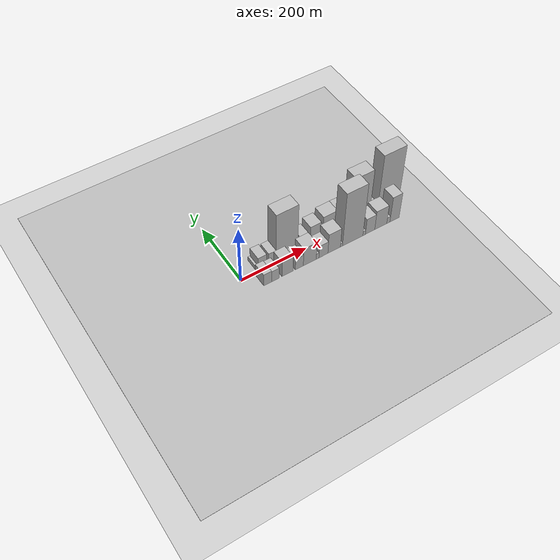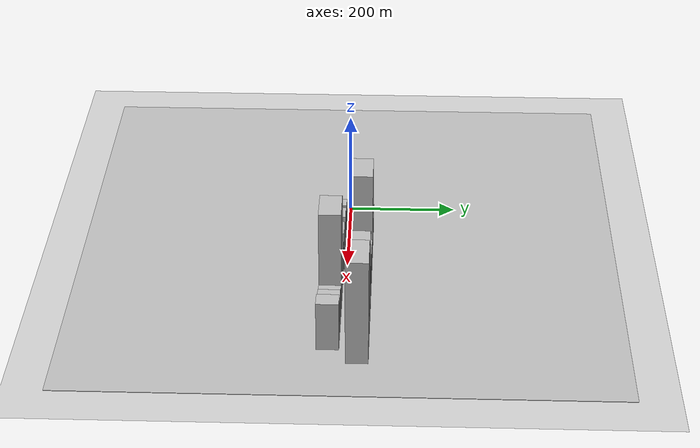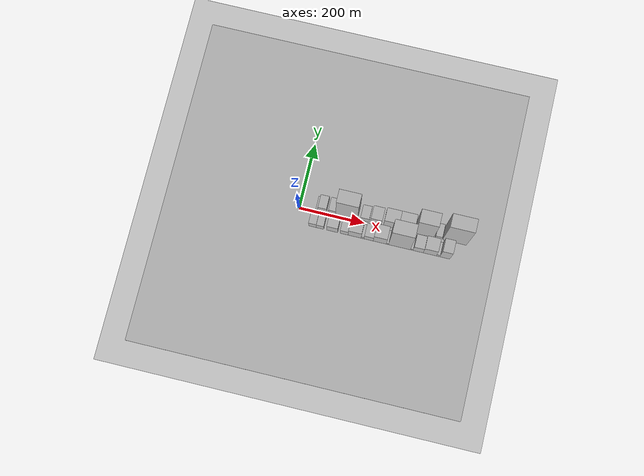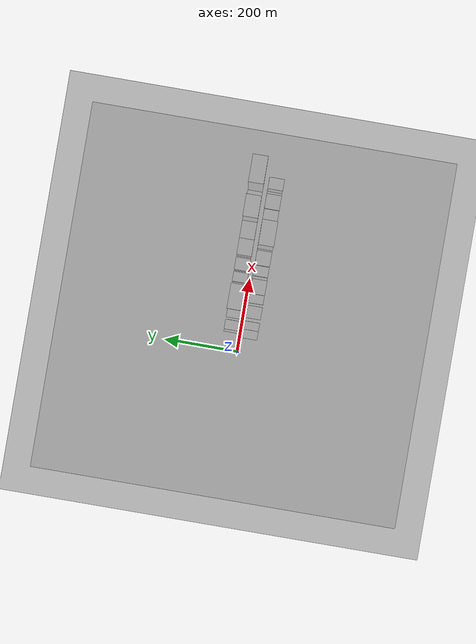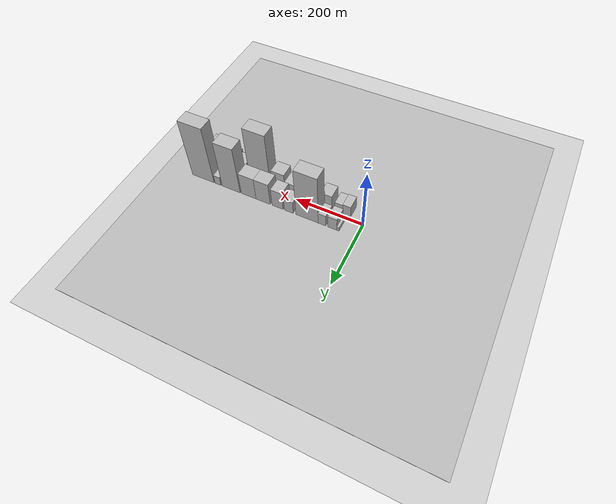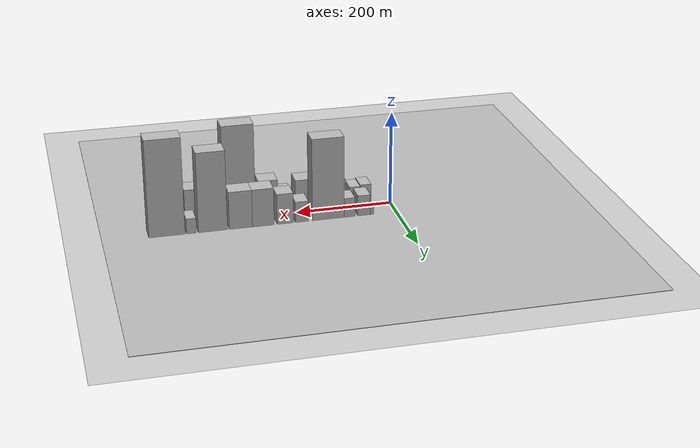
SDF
<?xml version="1.0" encoding="utf-8"?>

<sdf version="1.6">

   <world name="default">

      <gui fullscreen="0">

         <camera name="user_camera">

            <pose>-15 0 4.57585 0 0 0</pose>

            <view_controller>orbit</view_controller>

         </camera>

      </gui>

      <scene>

         <sky>

           <clouds>

             <speed>12</speed>

           </clouds>

         </sky>

         <ambient>0.4 0.4 0.4 1</ambient>

         <background>0.7 0.7 0.7 1</background>

         <shadows>1</shadows>

      </scene>

      <gravity>0 0 -9.8066</gravity>

      <magnetic_field>6e-06 2.3e-05 -4.2e-05</magnetic_field>

      <physics default="0" name="default_physics" type="ode">

         <ode>

            <solver>

               <type>quick</type>

               <iters>10</iters>

               <sor>1.0</sor>

               <use_dynamic_moi_rescaling>0</use_dynamic_moi_rescaling>

            </solver>

            <constraints>

               <cfm>0</cfm>

               <erp>0.2</erp>

               <contact_max_correcting_vel>100</contact_max_correcting_vel>

               <contact_surface_layer>0.001</contact_surface_layer>

            </constraints>

         </ode>

         <max_step_size>0.004</max_step_size>

         <real_time_factor>1</real_time_factor>

         <real_time_update_rate>250</real_time_update_rate>

      </physics>

      <light name="sun" type="directional">

         <cast_shadows>1</cast_shadows>

         <pose>0 0 10 0 0 0</pose>

         <diffuse>0.8 0.8 0.8 1</diffuse>

         <specular>0.2 0.2 0.2 1</specular>

         <attenuation>

            <range>1000</range>

            <constant>0.9</constant>

            <linear>0.01</linear>

            <quadratic>0.001</quadratic>

         </attenuation>

         <direction>-0.5 0.1 -0.9</direction>

      </light>

      <include>

         <name>ground_plane_1</name>

         <uri>model://HANNAS_ground_plane</uri>

         <pose>0 0 0  0 0 0</pose>

      </include>

      <include>

         <name>ground_plane_2</name>

         <uri>model://HANNAS_ground_plane</uri>

         <pose>100 0 0  0 0 0</pose>

      </include>

      <model name="building_1">

         <static>1</static>

         <pose frame="">52.3240 26.0000 0 0.000000 0.000000 1.570796</pose>

         <link name="link">

            <pose frame="">0 0 7.50 0 0 0</pose>

            <collision name="collision">

               <geometry>

                  <box>

                     <size>40.0000 6.6481 15.0000</size>

                  </box>

               </geometry>

               <max_contacts>10</max_contacts>

               <surface>

                  <contact>

                     <ode/>

                  </contact>

                  <bounce/>

                  <friction>

                     <torsional>

                        <ode/>

                     </torsional>

                     <ode/>

                  </friction>

               </surface>

            </collision>

            <visual name="visual">

               <cast_shadows>0</cast_shadows>

               <geometry>

                  <box>

                     <size>40.0000 6.6481 15.0000</size>

                  </box>

               </geometry>

               <material>

                  <script>

                     <uri>model://HANNAS_wall/materials/scripts</uri>

                     <uri>model://HANNAS_wall/materials/textures</uri>

                     <name>vrc/HANNAS_wall</name>

                  </script>

               </material>

            </visual>

            <self_collide>0</self_collide>

            <enable_wind>0</enable_wind>

            <kinematic>0</kinematic>

         </link>

      </model>

      <model name="building_2">

         <static>1</static>

         <pose frame="">68.7693 26.0000 0 0.000000 0.000000 1.570796</pose>

         <link name="link">

            <pose frame="">0 0 22.50 0 0 0</pose>

            <collision name="collision">

               <geometry>

                  <box>

                     <size>40.0000 26.2424 45.0000</size>

                  </box>

               </geometry>

               <max_contacts>10</max_contacts>

               <surface>

                  <contact>

                     <ode/>

                  </contact>

                  <bounce/>

                  <friction>

                     <torsional>

                        <ode/>

                     </torsional>

                     <ode/>

                  </friction>

               </surface>

            </collision>

            <visual name="visual">

               <cast_shadows>0</cast_shadows>

               <geometry>

                  <box>

                     <size>40.0000 26.2424 45.0000</size>

                  </box>

               </geometry>

               <material>

                  <script>

                     <uri>model://HANNAS_wall/materials/scripts</uri>

                     <uri>model://HANNAS_wall/materials/textures</uri>

                     <name>vrc/HANNAS_wall</name>

                  </script>

               </material>

            </visual>

            <self_collide>0</self_collide>

            <enable_wind>0</enable_wind>

            <kinematic>0</kinematic>

         </link>

      </model>

      <model name="building_3">

         <static>1</static>

         <pose frame="">99.1417 26.0000 0 0.000000 0.000000 1.570796</pose>

         <link name="link">

            <pose frame="">0 0 21.00 0 0 0</pose>

            <collision name="collision">

               <geometry>

                  <box>

                     <size>40.0000 22.5026 42.0000</size>

                  </box>

               </geometry>

               <max_contacts>10</max_contacts>

               <surface>

                  <contact>

                     <ode/>

                  </contact>

                  <bounce/>

                  <friction>

                     <torsional>

                        <ode/>

                     </torsional>

                     <ode/>

                  </friction>

               </surface>

            </collision>

            <visual name="visual">

               <cast_shadows>0</cast_shadows>

               <geometry>

                  <box>

                     <size>40.0000 22.5026 42.0000</size>

                  </box>

               </geometry>

               <material>

                  <script>

                     <uri>model://HANNAS_wall/materials/scripts</uri>

                     <uri>model://HANNAS_wall/materials/textures</uri>

                     <name>vrc/HANNAS_wall</name>

                  </script>

               </material>

            </visual>

            <self_collide>0</self_collide>

            <enable_wind>0</enable_wind>

            <kinematic>0</kinematic>

         </link>

      </model>

      <model name="building_4">

         <static>1</static>

         <pose frame="">143.6283 26.0000 0 0.000000 0.000000 1.570796</pose>

         <link name="link">

            <pose frame="">0 0 88.50 0 0 0</pose>

            <collision name="collision">

               <geometry>

                  <box>

                     <size>40.0000 66.4705 177.0000</size>

                  </box>

               </geometry>

               <max_contacts>10</max_contacts>

               <surface>

                  <contact>

                     <ode/>

                  </contact>

                  <bounce/>

                  <friction>

                     <torsional>

                        <ode/>

                     </torsional>

                     <ode/>

                  </friction>

               </surface>

            </collision>

            <visual name="visual">

               <cast_shadows>0</cast_shadows>

               <geometry>

                  <box>

                     <size>40.0000 66.4705 177.0000</size>

                  </box>

               </geometry>

               <material>

                  <script>

                     <uri>model://HANNAS_wall/materials/scripts</uri>

                     <uri>model://HANNAS_wall/materials/textures</uri>

                     <name>vrc/HANNAS_wall</name>

                  </script>

               </material>

            </visual>

            <self_collide>0</self_collide>

            <enable_wind>0</enable_wind>

            <kinematic>0</kinematic>

         </link>

      </model>

      <model name="building_5">

         <static>1</static>

         <pose frame="">198.3083 26.0000 0 0.000000 0.000000 1.570796</pose>

         <link name="link">

            <pose frame="">0 0 22.50 0 0 0</pose>

            <collision name="collision">

               <geometry>

                  <box>

                     <size>40.0000 26.8896 45.0000</size>

                  </box>

               </geometry>

               <max_contacts>10</max_contacts>

               <surface>

                  <contact>

                     <ode/>

                  </contact>

                  <bounce/>

                  <friction>

                     <torsional>

                        <ode/>

                     </torsional>

                     <ode/>

                  </friction>

               </surface>

            </collision>

            <visual name="visual">

               <cast_shadows>0</cast_shadows>

               <geometry>

                  <box>

                     <size>40.0000 26.8896 45.0000</size>

                  </box>

               </geometry>

               <material>

                  <script>

                     <uri>model://HANNAS_wall/materials/scripts</uri>

                     <uri>model://HANNAS_wall/materials/textures</uri>

                     <name>vrc/HANNAS_wall</name>

                  </script>

               </material>

            </visual>

            <self_collide>0</self_collide>

            <enable_wind>0</enable_wind>

            <kinematic>0</kinematic>

         </link>

      </model>

      <model name="building_6">

         <static>1</static>

         <pose frame="">232.7136 26.0000 0 0.000000 0.000000 1.570796</pose>

         <link name="link">

            <pose frame="">0 0 33.00 0 0 0</pose>

            <collision name="collision">

               <geometry>

                  <box>

                     <size>40.0000 33.9209 66.0000</size>

                  </box>

               </geometry>

               <max_contacts>10</max_contacts>

               <surface>

                  <contact>

                     <ode/>

                  </contact>

                  <bounce/>

                  <friction>

                     <torsional>

                        <ode/>

                     </torsional>

                     <ode/>

                  </friction>

               </surface>

            </collision>

            <visual name="visual">

               <cast_shadows>0</cast_shadows>

               <geometry>

                  <box>

                     <size>40.0000 33.9209 66.0000</size>

                  </box>

               </geometry>

               <material>

                  <script>

                     <uri>model://HANNAS_wall/materials/scripts</uri>

                     <uri>model://HANNAS_wall/materials/textures</uri>

                     <name>vrc/HANNAS_wall</name>

                  </script>

               </material>

            </visual>

            <self_collide>0</self_collide>

            <enable_wind>0</enable_wind>

            <kinematic>0</kinematic>

         </link>

      </model>

      <model name="building_7">

         <static>1</static>

         <pose frame="">277.8805 26.0000 0 0.000000 0.000000 1.570796</pose>

         <link name="link">

            <pose frame="">0 0 40.50 0 0 0</pose>

            <collision name="collision">

               <geometry>

                  <box>

                     <size>40.0000 44.4128 81.0000</size>

                  </box>

               </geometry>

               <max_contacts>10</max_contacts>

               <surface>

                  <contact>

                     <ode/>

                  </contact>

                  <bounce/>

                  <friction>

                     <torsional>

                        <ode/>

                     </torsional>

                     <ode/>

                  </friction>

               </surface>

            </collision>

            <visual name="visual">

               <cast_shadows>0</cast_shadows>

               <geometry>

                  <box>

                     <size>40.0000 44.4128 81.0000</size>

                  </box>

               </geometry>

               <material>

                  <script>

                     <uri>model://HANNAS_wall/materials/scripts</uri>

                     <uri>model://HANNAS_wall/materials/textures</uri>

                     <name>vrc/HANNAS_wall</name>

                  </script>

               </material>

            </visual>

            <self_collide>0</self_collide>

            <enable_wind>0</enable_wind>

            <kinematic>0</kinematic>

         </link>

      </model>

      <model name="building_8">

         <static>1</static>

         <pose frame="">323.5168 26.0000 0 0.000000 0.000000 1.570796</pose>

         <link name="link">

            <pose frame="">0 0 40.50 0 0 0</pose>

            <collision name="collision">

               <geometry>

                  <box>

                     <size>40.0000 46.8599 81.0000</size>

                  </box>

               </geometry>

               <max_contacts>10</max_contacts>

               <surface>

                  <contact>

                     <ode/>

                  </contact>

                  <bounce/>

                  <friction>

                     <torsional>

                        <ode/>

                     </torsional>

                     <ode/>

                  </friction>

               </surface>

            </collision>

            <visual name="visual">

               <cast_shadows>0</cast_shadows>

               <geometry>

                  <box>

                     <size>40.0000 46.8599 81.0000</size>

                  </box>

               </geometry>

               <material>

                  <script>

                     <uri>model://HANNAS_wall/materials/scripts</uri>

                     <uri>model://HANNAS_wall/materials/textures</uri>

                     <name>vrc/HANNAS_wall</name>

                  </script>

               </material>

            </visual>

            <self_collide>0</self_collide>

            <enable_wind>0</enable_wind>

            <kinematic>0</kinematic>

         </link>

      </model>

      <model name="building_9">

         <static>1</static>

         <pose frame="">380.1011 26.0000 0 0.000000 0.000000 1.570796</pose>

         <link name="link">

            <pose frame="">0 0 85.50 0 0 0</pose>

            <collision name="collision">

               <geometry>

                  <box>

                     <size>40.0000 58.3088 171.0000</size>

                  </box>

               </geometry>

               <max_contacts>10</max_contacts>

               <surface>

                  <contact>

                     <ode/>

                  </contact>

                  <bounce/>

                  <friction>

                     <torsional>

                        <ode/>

                     </torsional>

                     <ode/>

                  </friction>

               </surface>

            </collision>

            <visual name="visual">

               <cast_shadows>0</cast_shadows>

               <geometry>

                  <box>

                     <size>40.0000 58.3088 171.0000</size>

                  </box>

               </geometry>

               <material>

                  <script>

                     <uri>model://HANNAS_wall/materials/scripts</uri>

                     <uri>model://HANNAS_wall/materials/textures</uri>

                     <name>vrc/HANNAS_wall</name>

                  </script>

               </material>

            </visual>

            <self_collide>0</self_collide>

            <enable_wind>0</enable_wind>

            <kinematic>0</kinematic>

         </link>

      </model>

      <model name="building_10">

         <static>1</static>

         <pose frame="">423.1552 26.0000 0 0.000000 0.000000 1.570796</pose>

         <link name="link">

            <pose frame="">0 0 16.50 0 0 0</pose>

            <collision name="collision">

               <geometry>

                  <box>

                     <size>40.0000 19.7993 33.0000</size>

                  </box>

               </geometry>

               <max_contacts>10</max_contacts>

               <surface>

                  <contact>

                     <ode/>

                  </contact>

                  <bounce/>

                  <friction>

                     <torsional>

                        <ode/>

                     </torsional>

                     <ode/>

                  </friction>

               </surface>

            </collision>

            <visual name="visual">

               <cast_shadows>0</cast_shadows>

               <geometry>

                  <box>

                     <size>40.0000 19.7993 33.0000</size>

                  </box>

               </geometry>

               <material>

                  <script>

                     <uri>model://HANNAS_wall/materials/scripts</uri>

                     <uri>model://HANNAS_wall/materials/textures</uri>

                     <name>vrc/HANNAS_wall</name>

                  </script>

               </material>

            </visual>

            <self_collide>0</self_collide>

            <enable_wind>0</enable_wind>

            <kinematic>0</kinematic>

         </link>

      </model>

      <model name="building_11">

         <static>1</static>

         <pose frame="">472.1192 26.0000 0 0.000000 0.000000 1.570796</pose>

         <link name="link">

            <pose frame="">0 0 103.50 0 0 0</pose>

            <collision name="collision">

               <geometry>

                  <box>

                     <size>40.0000 72.1287 207.0000</size>

                  </box>

               </geometry>

               <max_contacts>10</max_contacts>

               <surface>

                  <contact>

                     <ode/>

                  </contact>

                  <bounce/>

                  <friction>

                     <torsional>

                        <ode/>

                     </torsional>

                     <ode/>

                  </friction>

               </surface>

            </collision>

            <visual name="visual">

               <cast_shadows>0</cast_shadows>

               <geometry>

                  <box>

                     <size>40.0000 72.1287 207.0000</size>

                  </box>

               </geometry>

               <material>

                  <script>

                     <uri>model://HANNAS_wall/materials/scripts</uri>

                     <uri>model://HANNAS_wall/materials/textures</uri>

                     <name>vrc/HANNAS_wall</name>

                  </script>

               </material>

            </visual>

            <self_collide>0</self_collide>

            <enable_wind>0</enable_wind>

            <kinematic>0</kinematic>

         </link>

      </model>

      <model name="building_12">

         <static>1</static>

         <pose frame="">51.7603 -26.0000 0 0.000000 0.000000 1.570796</pose>

         <link name="link">

            <pose frame="">0 0 22.50 0 0 0</pose>

            <collision name="collision">

               <geometry>

                  <box>

                     <size>40.0000 23.5205 45.0000</size>

                  </box>

               </geometry>

               <max_contacts>10</max_contacts>

               <surface>

                  <contact>

                     <ode/>

                  </contact>

                  <bounce/>

                  <friction>

                     <torsional>

                        <ode/>

                     </torsional>

                     <ode/>

                  </friction>

               </surface>

            </collision>

            <visual name="visual">

               <cast_shadows>0</cast_shadows>

               <geometry>

                  <box>

                     <size>40.0000 23.5205 45.0000</size>

                  </box>

               </geometry>

               <material>

                  <script>

                     <uri>model://HANNAS_wall/materials/scripts</uri>

                     <uri>model://HANNAS_wall/materials/textures</uri>

                     <name>vrc/HANNAS_wall</name>

                  </script>

               </material>

            </visual>

            <self_collide>0</self_collide>

            <enable_wind>0</enable_wind>

            <kinematic>0</kinematic>

         </link>

      </model>

      <model name="building_13">

         <static>1</static>

         <pose frame="">74.7185 -26.0000 0 0.000000 0.000000 1.570796</pose>

         <link name="link">

            <pose frame="">0 0 21.00 0 0 0</pose>

            <collision name="collision">

               <geometry>

                  <box>

                     <size>40.0000 22.3960 42.0000</size>

                  </box>

               </geometry>

               <max_contacts>10</max_contacts>

               <surface>

                  <contact>

                     <ode/>

                  </contact>

                  <bounce/>

                  <friction>

                     <torsional>

                        <ode/>

                     </torsional>

                     <ode/>

                  </friction>

               </surface>

            </collision>

            <visual name="visual">

               <cast_shadows>0</cast_shadows>

               <geometry>

                  <box>

                     <size>40.0000 22.3960 42.0000</size>

                  </box>

               </geometry>

               <material>

                  <script>

                     <uri>model://HANNAS_wall/materials/scripts</uri>

                     <uri>model://HANNAS_wall/materials/textures</uri>

                     <name>vrc/HANNAS_wall</name>

                  </script>

               </material>

            </visual>

            <self_collide>0</self_collide>

            <enable_wind>0</enable_wind>

            <kinematic>0</kinematic>

         </link>

      </model>

      <model name="building_14">

         <static>1</static>

         <pose frame="">111.7384 -26.0000 0 0.000000 0.000000 1.570796</pose>

         <link name="link">

            <pose frame="">0 0 30.00 0 0 0</pose>

            <collision name="collision">

               <geometry>

                  <box>

                     <size>40.0000 33.6438 60.0000</size>

                  </box>

               </geometry>

               <max_contacts>10</max_contacts>

               <surface>

                  <contact>

                     <ode/>

                  </contact>

                  <bounce/>

                  <friction>

                     <torsional>

                        <ode/>

                     </torsional>

                     <ode/>

                  </friction>

               </surface>

            </collision>

            <visual name="visual">

               <cast_shadows>0</cast_shadows>

               <geometry>

                  <box>

                     <size>40.0000 33.6438 60.0000</size>

                  </box>

               </geometry>

               <material>

                  <script>

                     <uri>model://HANNAS_wall/materials/scripts</uri>

                     <uri>model://HANNAS_wall/materials/textures</uri>

                     <name>vrc/HANNAS_wall</name>

                  </script>

               </material>

            </visual>

            <self_collide>0</self_collide>

            <enable_wind>0</enable_wind>

            <kinematic>0</kinematic>

         </link>

      </model>

      <model name="building_15">

         <static>1</static>

         <pose frame="">147.8506 -26.0000 0 0.000000 0.000000 1.570796</pose>

         <link name="link">

            <pose frame="">0 0 22.50 0 0 0</pose>

            <collision name="collision">

               <geometry>

                  <box>

                     <size>40.0000 24.5805 45.0000</size>

                  </box>

               </geometry>

               <max_contacts>10</max_contacts>

               <surface>

                  <contact>

                     <ode/>

                  </contact>

                  <bounce/>

                  <friction>

                     <torsional>

                        <ode/>

                     </torsional>

                     <ode/>

                  </friction>

               </surface>

            </collision>

            <visual name="visual">

               <cast_shadows>0</cast_shadows>

               <geometry>

                  <box>

                     <size>40.0000 24.5805 45.0000</size>

                  </box>

               </geometry>

               <material>

                  <script>

                     <uri>model://HANNAS_wall/materials/scripts</uri>

                     <uri>model://HANNAS_wall/materials/textures</uri>

                     <name>vrc/HANNAS_wall</name>

                  </script>

               </material>

            </visual>

            <self_collide>0</self_collide>

            <enable_wind>0</enable_wind>

            <kinematic>0</kinematic>

         </link>

      </model>

      <model name="building_16">

         <static>1</static>

         <pose frame="">180.1401 -26.0000 0 0.000000 0.000000 1.570796</pose>

         <link name="link">

            <pose frame="">0 0 34.50 0 0 0</pose>

            <collision name="collision">

               <geometry>

                  <box>

                     <size>40.0000 39.9987 69.0000</size>

                  </box>

               </geometry>

               <max_contacts>10</max_contacts>

               <surface>

                  <contact>

                     <ode/>

                  </contact>

                  <bounce/>

                  <friction>

                     <torsional>

                        <ode/>

                     </torsional>

                     <ode/>

                  </friction>

               </surface>

            </collision>

            <visual name="visual">

               <cast_shadows>0</cast_shadows>

               <geometry>

                  <box>

                     <size>40.0000 39.9987 69.0000</size>

                  </box>

               </geometry>

               <material>

                  <script>

                     <uri>model://HANNAS_wall/materials/scripts</uri>

                     <uri>model://HANNAS_wall/materials/textures</uri>

                     <name>vrc/HANNAS_wall</name>

                  </script>

               </material>

            </visual>

            <self_collide>0</self_collide>

            <enable_wind>0</enable_wind>

            <kinematic>0</kinematic>

         </link>

      </model>

      <model name="building_17">

         <static>1</static>

         <pose frame="">204.4885 -26.0000 0 0.000000 0.000000 1.570796</pose>

         <link name="link">

            <pose frame="">0 0 10.50 0 0 0</pose>

            <collision name="collision">

               <geometry>

                  <box>

                     <size>40.0000 8.6981 21.0000</size>

                  </box>

               </geometry>

               <max_contacts>10</max_contacts>

               <surface>

                  <contact>

                     <ode/>

                  </contact>

                  <bounce/>

                  <friction>

                     <torsional>

                        <ode/>

                     </torsional>

                     <ode/>

                  </friction>

               </surface>

            </collision>

            <visual name="visual">

               <cast_shadows>0</cast_shadows>

               <geometry>

                  <box>

                     <size>40.0000 8.6981 21.0000</size>

                  </box>

               </geometry>

               <material>

                  <script>

                     <uri>model://HANNAS_wall/materials/scripts</uri>

                     <uri>model://HANNAS_wall/materials/textures</uri>

                     <name>vrc/HANNAS_wall</name>

                  </script>

               </material>

            </visual>

            <self_collide>0</self_collide>

            <enable_wind>0</enable_wind>

            <kinematic>0</kinematic>

         </link>

      </model>

      <model name="building_18">

         <static>1</static>

         <pose frame="">222.9173 -26.0000 0 0.000000 0.000000 1.570796</pose>

         <link name="link">

            <pose frame="">0 0 24.00 0 0 0</pose>

            <collision name="collision">

               <geometry>

                  <box>

                     <size>40.0000 28.1595 48.0000</size>

                  </box>

               </geometry>

               <max_contacts>10</max_contacts>

               <surface>

                  <contact>

                     <ode/>

                  </contact>

                  <bounce/>

                  <friction>

                     <torsional>

                        <ode/>

                     </torsional>

                     <ode/>

                  </friction>

               </surface>

            </collision>

            <visual name="visual">

               <cast_shadows>0</cast_shadows>

               <geometry>

                  <box>

                     <size>40.0000 28.1595 48.0000</size>

                  </box>

               </geometry>

               <material>

                  <script>

                     <uri>model://HANNAS_wall/materials/scripts</uri>

                     <uri>model://HANNAS_wall/materials/textures</uri>

                     <name>vrc/HANNAS_wall</name>

                  </script>

               </material>

            </visual>

            <self_collide>0</self_collide>

            <enable_wind>0</enable_wind>

            <kinematic>0</kinematic>

         </link>

      </model>

      <model name="building_19">

         <static>1</static>

         <pose frame="">256.8285 -26.0000 0 0.000000 0.000000 1.570796</pose>

         <link name="link">

            <pose frame="">0 0 37.50 0 0 0</pose>

            <collision name="collision">

               <geometry>

                  <box>

                     <size>40.0000 39.6628 75.0000</size>

                  </box>

               </geometry>

               <max_contacts>10</max_contacts>

               <surface>

                  <contact>

                     <ode/>

                  </contact>

                  <bounce/>

                  <friction>

                     <torsional>

                        <ode/>

                     </torsional>

                     <ode/>

                  </friction>

               </surface>

            </collision>

            <visual name="visual">

               <cast_shadows>0</cast_shadows>

               <geometry>

                  <box>

                     <size>40.0000 39.6628 75.0000</size>

                  </box>

               </geometry>

               <material>

                  <script>

                     <uri>model://HANNAS_wall/materials/scripts</uri>

                     <uri>model://HANNAS_wall/materials/textures</uri>

                     <name>vrc/HANNAS_wall</name>

                  </script>

               </material>

            </visual>

            <self_collide>0</self_collide>

            <enable_wind>0</enable_wind>

            <kinematic>0</kinematic>

         </link>

      </model>

      <model name="building_20">

         <static>1</static>

         <pose frame="">280.0878 -26.0000 0 0.000000 0.000000 1.570796</pose>

         <link name="link">

            <pose frame="">0 0 7.50 0 0 0</pose>

            <collision name="collision">

               <geometry>

                  <box>

                     <size>40.0000 6.8558 15.0000</size>

                  </box>

               </geometry>

               <max_contacts>10</max_contacts>

               <surface>

                  <contact>

                     <ode/>

                  </contact>

                  <bounce/>

                  <friction>

                     <torsional>

                        <ode/>

                     </torsional>

                     <ode/>

                  </friction>

               </surface>

            </collision>

            <visual name="visual">

               <cast_shadows>0</cast_shadows>

               <geometry>

                  <box>

                     <size>40.0000 6.8558 15.0000</size>

                  </box>

               </geometry>

               <material>

                  <script>

                     <uri>model://HANNAS_wall/materials/scripts</uri>

                     <uri>model://HANNAS_wall/materials/textures</uri>

                     <name>vrc/HANNAS_wall</name>

                  </script>

               </material>

            </visual>

            <self_collide>0</self_collide>

            <enable_wind>0</enable_wind>

            <kinematic>0</kinematic>

         </link>

      </model>

      <model name="building_21">

         <static>1</static>

         <pose frame="">316.4201 -26.0000 0 0.000000 0.000000 1.570796</pose>

         <link name="link">

            <pose frame="">0 0 100.50 0 0 0</pose>

            <collision name="collision">

               <geometry>

                  <box>

                     <size>40.0000 65.8087 201.0000</size>

                  </box>

               </geometry>

               <max_contacts>10</max_contacts>

               <surface>

                  <contact>

                     <ode/>

                  </contact>

                  <bounce/>

                  <friction>

                     <torsional>

                        <ode/>

                     </torsional>

                     <ode/>

                  </friction>

               </surface>

            </collision>

            <visual name="visual">

               <cast_shadows>0</cast_shadows>

               <geometry>

                  <box>

                     <size>40.0000 65.8087 201.0000</size>

                  </box>

               </geometry>

               <material>

                  <script>

                     <uri>model://HANNAS_wall/materials/scripts</uri>

                     <uri>model://HANNAS_wall/materials/textures</uri>

                     <name>vrc/HANNAS_wall</name>

                  </script>

               </material>

            </visual>

            <self_collide>0</self_collide>

            <enable_wind>0</enable_wind>

            <kinematic>0</kinematic>

         </link>

      </model>

      <model name="building_22">

         <static>1</static>

         <pose frame="">353.5674 -26.0000 0 0.000000 0.000000 1.570796</pose>

         <link name="link">

            <pose frame="">0 0 9.00 0 0 0</pose>

            <collision name="collision">

               <geometry>

                  <box>

                     <size>40.0000 8.4860 18.0000</size>

                  </box>

               </geometry>

               <max_contacts>10</max_contacts>

               <surface>

                  <contact>

                     <ode/>

                  </contact>

                  <bounce/>

                  <friction>

                     <torsional>

                        <ode/>

                     </torsional>

                     <ode/>

                  </friction>

               </surface>

            </collision>

            <visual name="visual">

               <cast_shadows>0</cast_shadows>

               <geometry>

                  <box>

                     <size>40.0000 8.4860 18.0000</size>

                  </box>

               </geometry>

               <material>

                  <script>

                     <uri>model://HANNAS_wall/materials/scripts</uri>

                     <uri>model://HANNAS_wall/materials/textures</uri>

                     <name>vrc/HANNAS_wall</name>

                  </script>

               </material>

            </visual>

            <self_collide>0</self_collide>

            <enable_wind>0</enable_wind>

            <kinematic>0</kinematic>

         </link>

      </model>

      <model name="building_23">

         <static>1</static>

         <pose frame="">373.0919 -26.0000 0 0.000000 0.000000 1.570796</pose>

         <link name="link">

            <pose frame="">0 0 30.00 0 0 0</pose>

            <collision name="collision">

               <geometry>

                  <box>

                     <size>40.0000 30.5630 60.0000</size>

                  </box>

               </geometry>

               <max_contacts>10</max_contacts>

               <surface>

                  <contact>

                     <ode/>

                  </contact>

                  <bounce/>

                  <friction>

                     <torsional>

                        <ode/>

                     </torsional>

                     <ode/>

                  </friction>

               </surface>

            </collision>

            <visual name="visual">

               <cast_shadows>0</cast_shadows>

               <geometry>

                  <box>

                     <size>40.0000 30.5630 60.0000</size>

                  </box>

               </geometry>

               <material>

                  <script>

                     <uri>model://HANNAS_wall/materials/scripts</uri>

                     <uri>model://HANNAS_wall/materials/textures</uri>

                     <name>vrc/HANNAS_wall</name>

                  </script>

               </material>

            </visual>

            <self_collide>0</self_collide>

            <enable_wind>0</enable_wind>

            <kinematic>0</kinematic>

         </link>

      </model>

      <model name="building_24">

         <static>1</static>

         <pose frame="">408.2720 -26.0000 0 0.000000 0.000000 1.570796</pose>

         <link name="link">

            <pose frame="">0 0 36.00 0 0 0</pose>

            <collision name="collision">

               <geometry>

                  <box>

                     <size>40.0000 39.7973 72.0000</size>

                  </box>

               </geometry>

               <max_contacts>10</max_contacts>

               <surface>

                  <contact>

                     <ode/>

                  </contact>

                  <bounce/>

                  <friction>

                     <torsional>

                        <ode/>

                     </torsional>

                     <ode/>

                  </friction>

               </surface>

            </collision>

            <visual name="visual">

               <cast_shadows>0</cast_shadows>

               <geometry>

                  <box>

                     <size>40.0000 39.7973 72.0000</size>

                  </box>

               </geometry>

               <material>

                  <script>

                     <uri>model://HANNAS_wall/materials/scripts</uri>

                     <uri>model://HANNAS_wall/materials/textures</uri>

                     <name>vrc/HANNAS_wall</name>

                  </script>

               </material>

            </visual>

            <self_collide>0</self_collide>

            <enable_wind>0</enable_wind>

            <kinematic>0</kinematic>

         </link>

      </model>

      <model name="building_25">

         <static>1</static>

         <pose frame="">433.4349 -26.0000 0 0.000000 0.000000 1.570796</pose>

         <link name="link">

            <pose frame="">0 0 12.00 0 0 0</pose>

            <collision name="collision">

               <geometry>

                  <box>

                     <size>40.0000 10.5285 24.0000</size>

                  </box>

               </geometry>

               <max_contacts>10</max_contacts>

               <surface>

                  <contact>

                     <ode/>

                  </contact>

                  <bounce/>

                  <friction>

                     <torsional>

                        <ode/>

                     </torsional>

                     <ode/>

                  </friction>

               </surface>

            </collision>

            <visual name="visual">

               <cast_shadows>0</cast_shadows>

               <geometry>

                  <box>

                     <size>40.0000 10.5285 24.0000</size>

                  </box>

               </geometry>

               <material>

                  <script>

                     <uri>model://HANNAS_wall/materials/scripts</uri>

                     <uri>model://HANNAS_wall/materials/textures</uri>

                     <name>vrc/HANNAS_wall</name>

                  </script>

               </material>

            </visual>

            <self_collide>0</self_collide>

            <enable_wind>0</enable_wind>

            <kinematic>0</kinematic>

         </link>

      </model>

      <model name="building_26">

         <static>1</static>

         <pose frame="">454.0738 -26.0000 0 0.000000 0.000000 1.570796</pose>

         <link name="link">

            <pose frame="">0 0 48.00 0 0 0</pose>

            <collision name="collision">

               <geometry>

                  <box>

                     <size>40.0000 30.7493 96.0000</size>

                  </box>

               </geometry>

               <max_contacts>10</max_contacts>

               <surface>

                  <contact>

                     <ode/>

                  </contact>

                  <bounce/>

                  <friction>

                     <torsional>

                        <ode/>

                     </torsional>

                     <ode/>

                  </friction>

               </surface>

            </collision>

            <visual name="visual">

               <cast_shadows>0</cast_shadows>

               <geometry>

                  <box>

                     <size>40.0000 30.7493 96.0000</size>

                  </box>

               </geometry>

               <material>

                  <script>

                     <uri>model://HANNAS_wall/materials/scripts</uri>

                     <uri>model://HANNAS_wall/materials/textures</uri>

                     <name>vrc/HANNAS_wall</name>

                  </script>

               </material>

            </visual>

            <self_collide>0</self_collide>

            <enable_wind>0</enable_wind>

            <kinematic>0</kinematic>

         </link>

      </model>

   </world>

</sdf>

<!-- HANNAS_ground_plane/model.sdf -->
<sdf version="1.4">
<model name="HANNAS_ground_plane">
  <static>true</static>
    <link name="link">
      <collision name="collision">
        <geometry>
          <plane>
            <normal>0 0 1</normal>
            <size>1000 1000</size>
          </plane>
        </geometry>
        <surface>
          <friction>
            <ode>
              <mu>100</mu>
              <mu2>50</mu2>
            </ode>
          </friction>
        </surface>
      </collision>
      <visual name="visual">
        <cast_shadows>false</cast_shadows>
        <geometry>
          <plane>
            <normal>0 0 1</normal>
            <size>1000 1000</size>
          </plane>
        </geometry>
        <material>
          <script>
            <uri>model://HANNAS_ground_plane/materials/scripts/HANNAS_ground_plane.material</uri>
	    <uri>model://HANNAS_ground_plane/materials/textures</uri>
            <name>HANNASGroundPlane/Image</name>
          </script>
        </material>
      </visual>
    </link>
  </model>
</sdf>
